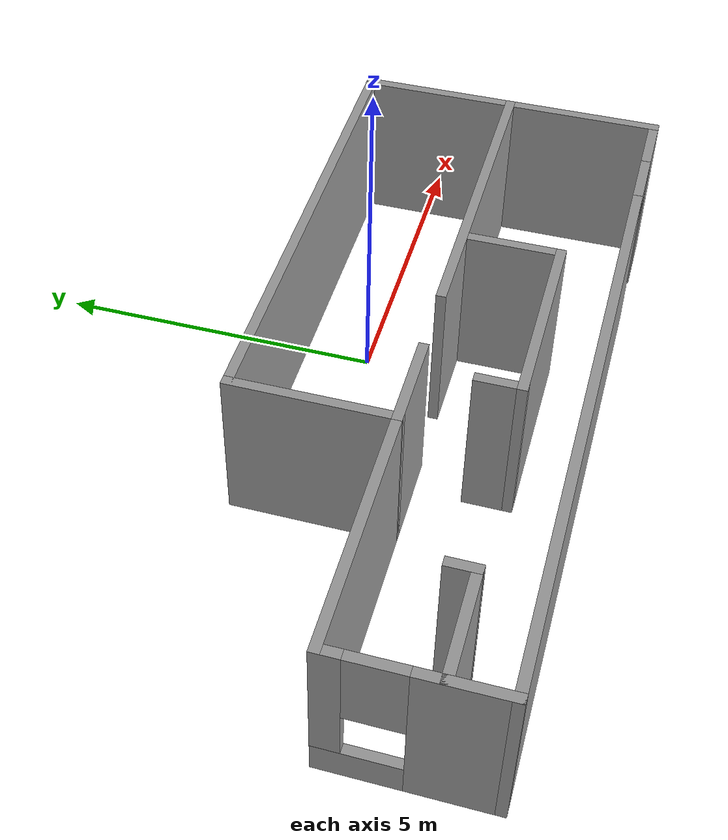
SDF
<?xml version='1.0'?>
<sdf version='1.6'>
  <model name='nav'>
    <pose frame=''>-1.52 -1.28 0 0 -0 0</pose>
    <link name='Wall_10'>
      <pose frame=''>0 -2.35 0 0 -0 3.14159</pose>
      <visual name='Wall_10_Visual_0'>
        <pose frame=''>-5.1125 0 1.25 0 -0 0</pose>
        <geometry>
          <box>
            <size>1.025 0.15 2.5</size>
          </box>
        </geometry>
        <material>
          <script>
            <uri>file://media/materials/scripts/gazebo.material</uri>
            <name>Gazebo/Grey</name>
          </script>
          <ambient>1 1 1 1</ambient>
        </material>
        <meta>
          <layer>0</layer>
        </meta>
      </visual>
      <collision name='Wall_10_Collision_0'>
        <geometry>
          <box>
            <size>1.025 0.15 2.5</size>
          </box>
        </geometry>
        <pose frame=''>-5.1125 0 1.25 0 -0 0</pose>
      </collision>
      <visual name='Wall_10_Visual_1'>
        <pose frame=''>0.9625 0 1.25 0 -0 0</pose>
        <geometry>
          <box>
            <size>9.325 0.15 2.5</size>
          </box>
        </geometry>
        <material>
          <script>
            <uri>file://media/materials/scripts/gazebo.material</uri>
            <name>Gazebo/Grey</name>
          </script>
          <ambient>1 1 1 1</ambient>
        </material>
        <meta>
          <layer>0</layer>
        </meta>
      </visual>
      <collision name='Wall_10_Collision_1'>
        <geometry>
          <box>
            <size>9.325 0.15 2.5</size>
          </box>
        </geometry>
        <pose frame=''>0.9625 0 1.25 0 -0 0</pose>
      </collision>
      <visual name='Wall_10_Visual_2'>
        <pose frame=''>-4.15 0 2.25 0 -0 0</pose>
        <geometry>
          <box>
            <size>0.9 0.15 0.5</size>
          </box>
        </geometry>
        <material>
          <script>
            <uri>file://media/materials/scripts/gazebo.material</uri>
            <name>Gazebo/Grey</name>
          </script>
          <ambient>1 1 1 1</ambient>
        </material>
        <meta>
          <layer>0</layer>
        </meta>
      </visual>
      <collision name='Wall_10_Collision_2'>
        <geometry>
          <box>
            <size>0.9 0.15 0.5</size>
          </box>
        </geometry>
        <pose frame=''>-4.15 0 2.25 0 -0 0</pose>
      </collision>
    </link>
    <link name='Wall_11'>
      <pose frame=''>-5.55 -1.175 0 0 -0 1.5708</pose>
      <visual name='Wall_11_Visual_0'>
        <pose frame=''>-0.5975 0 1.25 0 -0 0</pose>
        <geometry>
          <box>
            <size>1.305 0.15 2.5</size>
          </box>
        </geometry>
        <material>
          <script>
            <uri>file://media/materials/scripts/gazebo.material</uri>
            <name>Gazebo/Grey</name>
          </script>
          <ambient>1 1 1 1</ambient>
        </material>
        <meta>
          <layer>0</layer>
        </meta>
      </visual>
      <collision name='Wall_11_Collision_0'>
        <geometry>
          <box>
            <size>1.305 0.15 2.5</size>
          </box>
        </geometry>
        <pose frame=''>-0.5975 0 1.25 0 -0 0</pose>
      </collision>
      <visual name='Wall_11_Visual_1'>
        <pose frame=''>0.6525 0 0.25 0 -0 0</pose>
        <geometry>
          <box>
            <size>1.195 0.15 0.5</size>
          </box>
        </geometry>
        <material>
          <script>
            <uri>file://media/materials/scripts/gazebo.material</uri>
            <name>Gazebo/Grey</name>
          </script>
          <ambient>1 1 1 1</ambient>
        </material>
        <meta>
          <layer>0</layer>
        </meta>
      </visual>
      <collision name='Wall_11_Collision_1'>
        <geometry>
          <box>
            <size>1.195 0.15 0.5</size>
          </box>
        </geometry>
        <pose frame=''>0.6525 0 0.25 0 -0 0</pose>
      </collision>
      <visual name='Wall_11_Visual_2'>
        <pose frame=''>1.0525 0 1.5 0 -0 0</pose>
        <geometry>
          <box>
            <size>0.395 0.15 2</size>
          </box>
        </geometry>
        <material>
          <script>
            <uri>file://media/materials/scripts/gazebo.material</uri>
            <name>Gazebo/Grey</name>
          </script>
          <ambient>1 1 1 1</ambient>
        </material>
        <meta>
          <layer>0</layer>
        </meta>
      </visual>
      <collision name='Wall_11_Collision_2'>
        <geometry>
          <box>
            <size>0.395 0.15 2</size>
          </box>
        </geometry>
        <pose frame=''>1.0525 0 1.5 0 -0 0</pose>
      </collision>
      <visual name='Wall_11_Visual_3'>
        <pose frame=''>0.455 0 1.9 0 -0 0</pose>
        <geometry>
          <box>
            <size>0.8 0.15 1.2</size>
          </box>
        </geometry>
        <material>
          <script>
            <uri>file://media/materials/scripts/gazebo.material</uri>
            <name>Gazebo/Grey</name>
          </script>
          <ambient>1 1 1 1</ambient>
        </material>
        <meta>
          <layer>0</layer>
        </meta>
      </visual>
      <collision name='Wall_11_Collision_3'>
        <geometry>
          <box>
            <size>0.8 0.15 1.2</size>
          </box>
        </geometry>
        <pose frame=''>0.455 0 1.9 0 -0 0</pose>
      </collision>
    </link>
    <link name='Wall_12'>
      <collision name='Wall_12_Collision'>
        <geometry>
          <box>
            <size>3.9 0.15 2.5</size>
          </box>
        </geometry>
        <pose frame=''>0 0 1.25 0 -0 0</pose>
      </collision>
      <visual name='Wall_12_Visual'>
        <pose frame=''>0 0 1.25 0 -0 0</pose>
        <geometry>
          <box>
            <size>3.9 0.15 2.5</size>
          </box>
        </geometry>
        <material>
          <script>
            <uri>file://media/materials/scripts/gazebo.material</uri>
            <name>Gazebo/Grey</name>
          </script>
          <ambient>1 1 1 1</ambient>
        </material>
        <meta>
          <layer>0</layer>
        </meta>
      </visual>
      <pose frame=''>-3.675 0 0 0 -0 0</pose>
    </link>
    <link name='Wall_14'>
      <collision name='Wall_14_Collision'>
        <geometry>
          <box>
            <size>1.75 0.15 2.5</size>
          </box>
        </geometry>
        <pose frame=''>0 0 1.25 0 -0 0</pose>
      </collision>
      <visual name='Wall_14_Visual'>
        <pose frame=''>0 0 1.25 0 -0 0</pose>
        <geometry>
          <box>
            <size>1.75 0.15 2.5</size>
          </box>
        </geometry>
        <material>
          <script>
            <uri>file://media/materials/scripts/gazebo.material</uri>
            <name>Gazebo/Grey</name>
          </script>
          <ambient>1 1 1 1</ambient>
        </material>
        <meta>
          <layer>0</layer>
        </meta>
      </visual>
      <pose frame=''>-4.74 -1.53 0 0 -0 0</pose>
    </link>
    <link name='Wall_15'>
      <collision name='Wall_15_Collision'>
        <geometry>
          <box>
            <size>0.5 0.15 2.5</size>
          </box>
        </geometry>
        <pose frame=''>0 0 1.25 0 -0 0</pose>
      </collision>
      <visual name='Wall_15_Visual'>
        <pose frame=''>0 0 1.25 0 -0 0</pose>
        <geometry>
          <box>
            <size>0.5 0.15 2.5</size>
          </box>
        </geometry>
        <material>
          <script>
            <uri>file://media/materials/scripts/gazebo.material</uri>
            <name>Gazebo/Grey</name>
          </script>
          <ambient>1 1 1 1</ambient>
        </material>
        <meta>
          <layer>0</layer>
        </meta>
      </visual>
      <pose frame=''>-3.94 -1.355 0 0 -0 1.5708</pose>
    </link>
    <link name='Wall_17'>
      <collision name='Wall_17_Collision'>
        <geometry>
          <box>
            <size>1.5 0.15 2.5</size>
          </box>
        </geometry>
        <pose frame=''>0 0 1.25 0 -0 0</pose>
      </collision>
      <visual name='Wall_17_Visual'>
        <pose frame=''>0 0 1.25 0 -0 0</pose>
        <geometry>
          <box>
            <size>1.5 0.15 2.5</size>
          </box>
        </geometry>
        <material>
          <script>
            <uri>file://media/materials/scripts/gazebo.material</uri>
            <name>Gazebo/Grey</name>
          </script>
          <ambient>1 1 1 1</ambient>
        </material>
        <meta>
          <layer>0</layer>
        </meta>
      </visual>
      <pose frame=''>2.04 -0.785 0 0 0 -1.5708</pose>
    </link>
    <link name='Wall_18'>
      <collision name='Wall_18_Collision'>
        <geometry>
          <box>
            <size>3 0.15 2.5</size>
          </box>
        </geometry>
        <pose frame=''>0 0 1.25 0 -0 0</pose>
      </collision>
      <visual name='Wall_18_Visual'>
        <pose frame=''>0 0 1.25 0 -0 0</pose>
        <geometry>
          <box>
            <size>3 0.15 2.5</size>
          </box>
        </geometry>
        <material>
          <script>
            <uri>file://media/materials/scripts/gazebo.material</uri>
            <name>Gazebo/Grey</name>
          </script>
          <ambient>1 1 1 1</ambient>
        </material>
        <meta>
          <layer>0</layer>
        </meta>
      </visual>
      <pose frame=''>0.615 -1.46 0 0 -0 3.14159</pose>
    </link>
    <link name='Wall_19'>
      <collision name='Wall_19_Collision'>
        <geometry>
          <box>
            <size>0.75 0.15 2.5</size>
          </box>
        </geometry>
        <pose frame=''>0 0 1.25 0 -0 0</pose>
      </collision>
      <visual name='Wall_19_Visual'>
        <pose frame=''>0 0 1.25 0 -0 0</pose>
        <geometry>
          <box>
            <size>0.75 0.15 2.5</size>
          </box>
        </geometry>
        <material>
          <script>
            <uri>file://media/materials/scripts/gazebo.material</uri>
            <name>Gazebo/Grey</name>
          </script>
          <ambient>1 1 1 1</ambient>
        </material>
        <meta>
          <layer>0</layer>
        </meta>
      </visual>
      <pose frame=''>-0.81 -1.16 0 0 -0 1.5708</pose>
    </link>
    <link name='Wall_2'>
      <collision name='Wall_2_Collision'>
        <geometry>
          <box>
            <size>2.5 0.15 2.5</size>
          </box>
        </geometry>
        <pose frame=''>0 0 1.25 0 -0 0</pose>
      </collision>
      <visual name='Wall_2_Visual'>
        <pose frame=''>0 0 1.25 0 -0 0</pose>
        <geometry>
          <box>
            <size>2.5 0.15 2.5</size>
          </box>
        </geometry>
        <material>
          <script>
            <uri>file://media/materials/scripts/gazebo.material</uri>
            <name>Gazebo/Grey</name>
          </script>
          <ambient>1 1 1 1</ambient>
        </material>
        <meta>
          <layer>0</layer>
        </meta>
      </visual>
      <pose frame=''>-1.8 1.175 0 0 -0 1.5708</pose>
    </link>
    <link name='Wall_3'>
      <collision name='Wall_3_Collision'>
        <geometry>
          <box>
            <size>7.5 0.15 2.5</size>
          </box>
        </geometry>
        <pose frame=''>0 0 1.25 0 -0 0</pose>
      </collision>
      <visual name='Wall_3_Visual'>
        <pose frame=''>0 0 1.25 0 -0 0</pose>
        <geometry>
          <box>
            <size>7.5 0.15 2.5</size>
          </box>
        </geometry>
        <material>
          <script>
            <uri>file://media/materials/scripts/gazebo.material</uri>
            <name>Gazebo/Grey</name>
          </script>
          <ambient>1 1 1 1</ambient>
        </material>
        <meta>
          <layer>0</layer>
        </meta>
      </visual>
      <pose frame=''>1.875 2.35 0 0 -0 0</pose>
    </link>
    <link name='Wall_4'>
      <collision name='Wall_4_Collision'>
        <geometry>
          <box>
            <size>2.5 0.15 2.5</size>
          </box>
        </geometry>
        <pose frame=''>0 0 1.25 0 -0 0</pose>
      </collision>
      <visual name='Wall_4_Visual'>
        <pose frame=''>0 0 1.25 0 -0 0</pose>
        <geometry>
          <box>
            <size>2.5 0.15 2.5</size>
          </box>
        </geometry>
        <material>
          <script>
            <uri>file://media/materials/scripts/gazebo.material</uri>
            <name>Gazebo/Grey</name>
          </script>
          <ambient>1 1 1 1</ambient>
        </material>
        <meta>
          <layer>0</layer>
        </meta>
      </visual>
      <pose frame=''>5.55 1.175 0 0 0 -1.5708</pose>
    </link>
    <link name='Wall_5'>
      <collision name='Wall_5_Collision'>
        <geometry>
          <box>
            <size>5 0.15 2.5</size>
          </box>
        </geometry>
        <pose frame=''>0 0 1.25 0 -0 0</pose>
      </collision>
      <visual name='Wall_5_Visual'>
        <pose frame=''>0 0 1.25 0 -0 0</pose>
        <geometry>
          <box>
            <size>5 0.15 2.5</size>
          </box>
        </geometry>
        <material>
          <script>
            <uri>file://media/materials/scripts/gazebo.material</uri>
            <name>Gazebo/Grey</name>
          </script>
          <ambient>1 1 1 1</ambient>
        </material>
        <meta>
          <layer>0</layer>
        </meta>
      </visual>
      <pose frame=''>3.125 0 0 0 -0 3.14159</pose>
    </link>
    <link name='Wall_7'>
      <collision name='Wall_7_Collision'>
        <geometry>
          <box>
            <size>1.5 0.15 2.5</size>
          </box>
        </geometry>
        <pose frame=''>0 0 1.25 0 -0 0</pose>
      </collision>
      <visual name='Wall_7_Visual'>
        <pose frame=''>0 0 1.25 0 -0 0</pose>
        <geometry>
          <box>
            <size>1.5 0.15 2.5</size>
          </box>
        </geometry>
        <material>
          <script>
            <uri>file://media/materials/scripts/gazebo.material</uri>
            <name>Gazebo/Grey</name>
          </script>
          <ambient>1 1 1 1</ambient>
        </material>
        <meta>
          <layer>0</layer>
        </meta>
      </visual>
      <pose frame=''>-1.125 0 0 0 -0 0</pose>
    </link>
    <link name='Wall_9'>
      <collision name='Wall_9_Collision'>
        <geometry>
          <box>
            <size>2.5 0.15 2.5</size>
          </box>
        </geometry>
        <pose frame=''>0 0 1.25 0 -0 0</pose>
      </collision>
      <visual name='Wall_9_Visual'>
        <pose frame=''>0 0 1.25 0 -0 0</pose>
        <geometry>
          <box>
            <size>2.5 0.15 2.5</size>
          </box>
        </geometry>
        <material>
          <script>
            <uri>file://media/materials/scripts/gazebo.material</uri>
            <name>Gazebo/Grey</name>
          </script>
          <ambient>1 1 1 1</ambient>
        </material>
        <meta>
          <layer>0</layer>
        </meta>
      </visual>
      <pose frame=''>5.55 -1.175 0 0 0 -1.5708</pose>
    </link>
    <static>1</static>
  </model>
</sdf>
